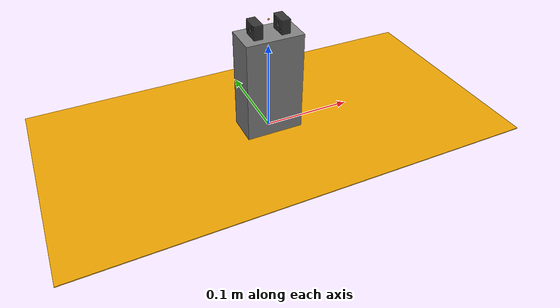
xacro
<?xml version="1.0"?>
<!-- Gripper-only description for an example visualization -->

<!-- top level -->
<robot name="gripper" xmlns:xacro="http://www.ros.org/wiki/xacro">
    <xacro:include filename="$(find papouch_description)/urdf/_materials.urdf.xacro" />
    <xacro:include filename="$(find papouch_description)/urdf/schunk_gripper.xacro" />

    <link name="base">
        <visual>
            <origin xyz="0 0 0" rpy="0 0 0"/>
            <geometry>
	            <box size="0.5 0.25 0.001"/>
            </geometry>
        </visual>
    </link>

    <xacro:schunk_gripper parent="base" name="gripper"/>

    <!-- tcp -->
    <link name="gripper_link_tool">
        <visual>
            <origin xyz="0 0 0" rpy="0 0 0"/>
            <geometry>
	            <sphere radius="0.001"/>
            </geometry>
            <material name="papouch:dummy"/>
        </visual>
    </link>

    <joint name="gripper_joint_tool" type="fixed">
        <parent link="gripper" />
        <child link="gripper_link_tool" />
        <origin xyz="0 0 0" rpy="0 0 0" />
    </joint>

</robot>

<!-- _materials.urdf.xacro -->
<robot xmlns:xacro="http://ros.org/wiki/xacro">
    <xacro:property name="papouch_materials_defined" default="false"/>
    <xacro:unless value="${papouch_materials_defined}">
        <xacro:property name="papouch_materials_defined" value="true"/>

        <material name="papouch:dummy">
            <color rgba="1.0 0.5 0.0 1"/>
        </material>

        <material name="papouch:steel">
            <color rgba="0.5 0.5 0.5 1"/>
        </material>

        <material name="papouch:black">
            <color rgba="0.2 0.2 0.2 1"/>
        </material>

        <material name="papouch:gray">
            <color rgba="0.7 0.7 0.7 1"/>
        </material>

        <material name="papouch:orange">
            <color rgba="1.0 0.3 0.0 1"/>
        </material>

        <material name="papouch:yellow">
            <color rgba="1.0 0.7 0.0 1"/>
        </material>

    </xacro:unless>
</robot>

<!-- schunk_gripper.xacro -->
<robot name="schunk_gripper" xmlns:xacro="http://ros.org/wiki/xacro">
    <xacro:include
            filename="$(find papouch_description)/urdf/_materials.urdf.xacro"/>

    <xacro:macro name="schunk_gripper" params="parent name:=gripper">

        <joint name="${name}_base_joint" type="fixed">
            <origin xyz="0 0 0" rpy="0 0 0"/>
            <parent link="${parent}"/>
            <child link="${name}_base"/>
        </joint>

        <link name="${name}_base">
            <visual>
                <origin xyz="0 0 0" rpy="0 0 0"/>
                <geometry>
                    <mesh filename="package://papouch_description/meshes/schunk_gripper_body.stl"
                          scale="0.001 0.001 0.001"/>
                </geometry>
                <material name="papouch:steel"/>
            </visual>
        </link>

        <link name="${name}_finger_p">
            <inertial>
                <origin rpy="0 0 0" xyz="0.0 0.0 0.0" />
                <mass value="0.02" />
                <inertia ixx="0.0003" ixy="0.0" ixz="0.0" iyy="0.0003" iyz="-0.00005" izz="0.00009" />
            </inertial>

            <visual>
                <origin xyz="0 0 0" rpy="0 0 0"/>
                <geometry>
                    <mesh filename="package://papouch_description/meshes/schunk_gripper_finger.stl"
                          scale="0.001 0.001 0.001"/>
                </geometry>
                <material name="papouch:black"/>
            </visual>
        </link>

        <link name="${name}_finger_m">
            <inertial>
                <origin rpy="0 0 0" xyz="0 0 0" />
                <mass value="0.02" />
                <inertia ixx="0.0003" ixy="0.0" ixz="0.0" iyy="0.0003" iyz="-0.00005" izz="0.00009" />
            </inertial>

            <visual>
                <origin xyz="0 0 0" rpy="0 0 0"/>
                <geometry>
                    <mesh filename="package://papouch_description/meshes/schunk_gripper_finger.stl"
                          scale="0.001 0.001 0.001"/>
                </geometry>
                <material name="papouch:black"/>
            </visual>
        </link>

        <joint name="${name}_joint" type="prismatic">
            <parent link="${name}_base"/>
            <child link="${name}_finger_p"/>
            <origin xyz="0 0 0.115" rpy="0 0 0"/>
            <axis xyz="1 0 0"/>
            <limit lower="0.01" upper="0.02" effort="80.0" velocity="0.05"/>
        </joint>

        <joint name="${name}_joint_mirror" type="prismatic">
            <parent link="${name}_base"/>
            <child link="${name}_finger_m"/>
            <origin xyz="0 0 0.115" rpy="0 0 3.1416"/>
            <axis xyz="1 0 0"/>
            <limit lower="0.01" upper="0.02" effort="80.0" velocity="0.05"/>
            <mimic joint="${name}_joint" multiplier="1.0" offset="0.0"/>
        </joint>

        <!--tcp -->
        <link name="${name}"/>
        <joint name="${name}_gripper" type="fixed">
            <parent link="${name}_base"/>
            <child link="${name}"/>
            <origin xyz="0 0 0.130" rpy="0 0 0"/>
        </joint>
    </xacro:macro>
</robot>
